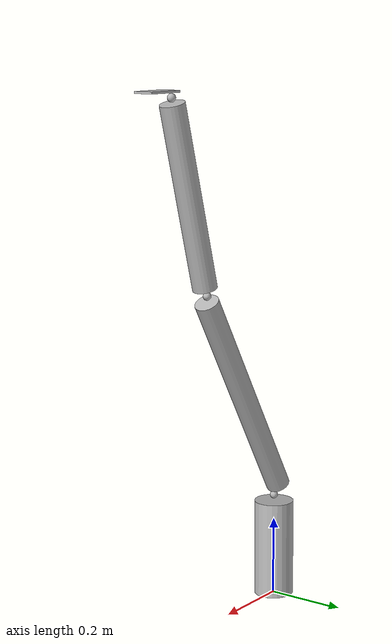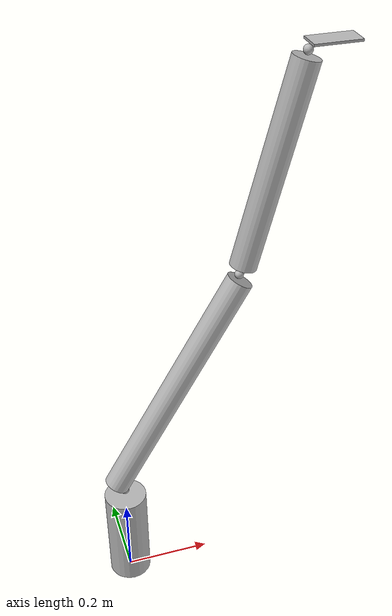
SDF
<?xml version="1.0" ?>
<sdf version="1.5">
  <model name="tree_model">
	<pose>0 0 0.125 0 0 0</pose>
	<static>false</static>
	<self_collide>true</self_collide>
	<link name = "stationary">
		<inertial>
		<mass>1000</mass>
        	<inertia>
          	<ixx>10</ixx>
          	<ixy>10</ixy>
          	<ixz>10</ixz>
          	<iyy>10</iyy>
          	<iyz>10</iyz>
          	<izz>10</izz>
        	</inertia>
      	</inertial>
	<visual name="stationary_visual">
		<geometry>
		<cylinder>
		<radius>0.05</radius>
		<length>0.25</length>
		</cylinder>
		</geometry>
	</visual>
        <collision name="stationary_collision">
                <geometry>
                <cylinder>
                <radius>0.05</radius>
                <length>0.25</length>
                </cylinder>
		</geometry>
        </collision>
	</link>

       <link name = "branch1joint">
                <pose> 0 0 0.14 0 0 0 </pose>
                <inertial>
                <mass>0.0001</mass>
                <inertia>
                <ixx>0.0000000030225</ixx>
                <ixy>0</ixy>
                <ixz>0</ixz>
                <iyy>0.0000000030225</iyy>
                <iyz>0</iyz>
                <izz>0.0000000030225</izz>
                </inertia>
        </inertial>
        <visual name="branch1joint_visual">
                <geometry>
                <sphere>
                <radius>0.01</radius>
                </sphere>
                </geometry>
        </visual>
        <collision name="branch1joint_collision">
                <geometry>
                <sphere>
                <radius>0.01</radius>
                </sphere>
                </geometry>
        </collision>
        </link>

       <link name = "branch1">
		<pose> 0.132 0 0.424 0 0.5236 0 </pose>
                <inertial>
                <mass>0.1</mass>
                <inertia>
                <ixx>0.0030225</ixx>
                <ixy>0</ixy>
                <ixz>0</ixz>
                <iyy>0.0030225</iyy>
                <iyz>0</iyz>
                <izz>0.000045</izz>
                </inertia>
        </inertial>
        <visual name="branch1_visual">
                <geometry>
                <cylinder>
                <radius>0.03</radius>
                <length>0.6</length>
                </cylinder>
                </geometry>
        </visual>
        <collision name="branch1_collision">
                <geometry>
                <cylinder>
                <radius>0.03</radius>
                <length>0.6</length>
                </cylinder>
                </geometry>
        </collision>
        </link>

       <link name = "branch2joint">
                <pose> 0.28 0 0.699 0 0 0 </pose>
                <inertial>
                <mass>0.0001</mass>
                <inertia>
                <ixx>0.0000000030225</ixx>
                <ixy>0</ixy>
                <ixz>0</ixz>
                <iyy>0.0000000030225</iyy>
                <iyz>0</iyz>
                <izz>0.0000000030225</izz>
                </inertia>
        </inertial>
        <visual name="branch2joint_visual">
                <geometry>
                <sphere>
                <radius>0.01</radius>
                </sphere>
                </geometry>
        </visual>
        <collision name="branch2joint_collision">
                <geometry>
                <sphere>
                <radius>0.01</radius>
                </sphere>
                </geometry>
        </collision>
        </link>

       <link name = "branch2">
                <pose> 0.346 0 0.935 0 0.2618 0 </pose>
                <inertial>
                <mass>0.07</mass>
                <inertia>
                <ixx>0.00171</ixx>
                <ixy>0</ixy>
                <ixz>0</ixz>
                <iyy>0.00171</iyy>
                <iyz>0</iyz>
                <izz>0.000045</izz>
                </inertia>
        </inertial>
        <visual name="branch2_visual">
                <geometry>
                <cylinder>
                <radius>0.03</radius>
                <length>0.45</length>
                </cylinder>
                </geometry>
        </visual>
        <collision name="branch2_collision">
                <geometry>
                <cylinder>
                <radius>0.03</radius>
                <length>0.6</length>
                </cylinder>
                </geometry>
        </collision>
        </link>

       <link name = "leaf1">
                <pose> 0.456 0 1.18 0 0 0 </pose>
                <inertial>
                <mass>0.01</mass>
                <inertia>
                <ixx>0.00000171</ixx>
                <ixy>0</ixy>
                <ixz>0</ixz>
                <iyy>0.00000171</iyy>
                <iyz>0</iyz>
                <izz>0.00000045</izz>
                </inertia>
        </inertial>
        <visual name="leaf1_visual">
                <geometry>
                <box>
                <size>0.1 0.05 0.005</size>
                </box>
                </geometry>
        </visual>
        <collision name="leaf2_collision">
                <geometry>
                <box>
                <size>0.1 0.05 0.005</size>
                </box>
                </geometry>
	 </collision>
        </link>

       <link name = "leaf1joint">
                <pose> 0.406 0 1.165 0 0 0 </pose>
                <inertial>
                <mass>0.0001</mass>
                <inertia>
                <ixx>0.0000000030225</ixx>
                <ixy>0</ixy>
                <ixz>0</ixz>
                <iyy>0.0000000030225</iyy>
                <iyz>0</iyz>
                <izz>0.0000000030225</izz>
                </inertia>
        </inertial>
        <visual name="leaf1joint_visual">
                <geometry>
                <sphere>
                <radius>0.01</radius>
                </sphere>
                </geometry>
        </visual>
        <collision name="leaf1joint_collision">
                <geometry>
                <sphere>
                <radius>0.01</radius>
                </sphere>
                </geometry>
        </collision>
        </link>

	<joint name="branch1_joint" type="revolute">
	<parent>branch1joint</parent>
	<child>stationary</child>
	<axis>
		<xyz>0 1 0</xyz>
	</axis>
	<pose>0 0 0.125 0 0 0</pose>
	</joint>

        <joint name="branch1_joint2" type="revolute">
        <parent>branch1</parent>
        <child>branch1joint</child>
        <axis>
                <xyz>1 0 0</xyz>
                <dynamics>
                <damping>0</damping>
                <spring_reference>0</spring_reference>
                <spring_stiffness>0</spring_stiffness>
                </dynamics>
        </axis>
        <pose>0 0 0 0 0 0</pose>
        </joint>

        <joint name="branch2_joint" type="revolute">
        <parent>branch1</parent>
        <child>branch2joint</child>
        <axis>
                <xyz>0 1 0</xyz>
        </axis>
        <pose>0 0 0 0 0 0</pose>
        </joint>

        <joint name="branch2_joint2" type="revolute">
        <parent>branch2joint</parent>
        <child>branch2</child>
        <axis>
                <xyz>1 0 0</xyz>
                <dynamics>
                <damping>0</damping>
                <spring_reference>0</spring_reference>
                <spring_stiffness>0</spring_stiffness>
                </dynamics>
        </axis>
	<pose> 0 0 -0.225 1.1 0 0.3</pose>
        </joint>

        <joint name="leaf1_joint" type="revolute">
        <parent>branch2</parent>
        <child>leaf1joint</child>
        <axis>
                <xyz>1 0 0</xyz>
        </axis>
        <pose>0 0 0 0 0 0</pose>
        </joint>

        <joint name="leaf1_joint2" type="revolute">
        <parent>leaf1joint</parent>
        <child>leaf1</child>
        <axis>
                <xyz>0 1 0</xyz>
                <dynamics>
                <damping>0</damping>
                <spring_reference>0</spring_reference>
                <spring_stiffness>0</spring_stiffness>
                </dynamics>
        </axis>
        <pose>-0.05 0 -0.008 0 0 0</pose>
        </joint>

  </model>
</sdf>
